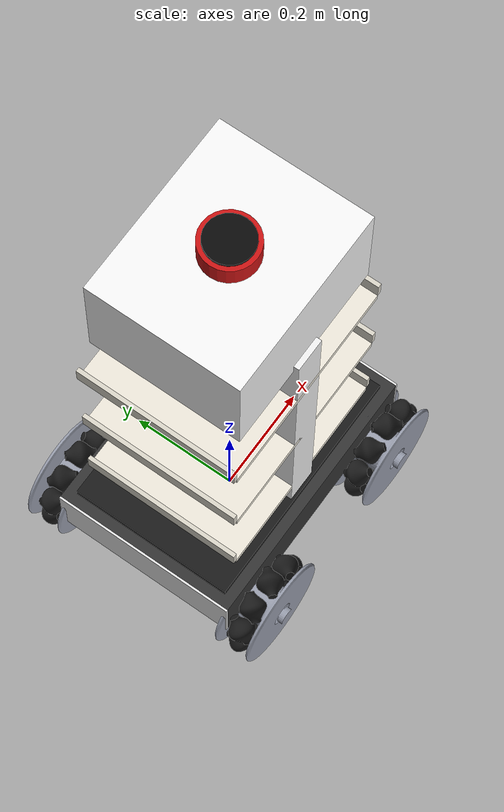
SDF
<?xml version="1.0" ?>
<sdf version="1.6">
  <model name="mecanum_bot" xmlns:ignition="http://ignitionrobotics.org/schema">

    <link name="base_link">
      <pose>0 0 0.15 0 0 0</pose>
      <inertial>
        <mass>15.0</mass>
        <inertia>
          <ixx>1.40</ixx><ixy>0</ixy><ixz>0</ixz>
          <iyy>1.56</iyy><iyz>0</iyz><izz>0.47</izz>
        </inertia>
      </inertial>

      <!-- ── Chassis body — dark charcoal ───────────────────── -->
      <visual name="chassis">
        <geometry><box><size>0.50 0.35 0.10</size></box></geometry>
        <material>
          <ambient>0.18 0.18 0.18 1</ambient>
          <diffuse>0.20 0.20 0.20 1</diffuse>
          <specular>0.30 0.30 0.30 1</specular>
        </material>
      </visual>

      <!-- Chassis top plate — slightly darker -->
      <visual name="chassis_top">
        <pose>0 0 0.056 0 0 0</pose>
        <geometry><box><size>0.46 0.31 0.012</size></box></geometry>
        <material>
          <ambient>0.10 0.10 0.10 1</ambient>
          <diffuse>0.10 0.10 0.10 1</diffuse>
          <specular>0.15 0.15 0.15 1</specular>
        </material>
      </visual>

      <!-- Front accent strip — white -->
      <visual name="front_strip">
        <pose>0.252 0 0 0 0 0</pose>
        <geometry><box><size>0.004 0.35 0.10</size></box></geometry>
        <material>
          <ambient>0.90 0.90 0.90 1</ambient>
          <diffuse>0.90 0.90 0.90 1</diffuse>
        </material>
      </visual>

      <!-- Rear accent strip — white -->
      <visual name="rear_strip">
        <pose>-0.252 0 0 0 0 0</pose>
        <geometry><box><size>0.004 0.35 0.10</size></box></geometry>
        <material>
          <ambient>0.90 0.90 0.90 1</ambient>
          <diffuse>0.90 0.90 0.90 1</diffuse>
        </material>
      </visual>

      <!-- ── Vertical pillars — pure white ──────────────────────
           BL z=0.34, h=0.58 → world z=0.20 to 0.78 m
      ─────────────────────────────────────────────────────────── -->
      <visual name="pillar_left">
        <pose>0 0.125 0.34 0 0 0</pose>
        <geometry><box><size>0.06 0.05 0.58</size></box></geometry>
        <material>
          <ambient>0.94 0.94 0.94 1</ambient>
          <diffuse>0.94 0.94 0.94 1</diffuse>
          <specular>0.70 0.70 0.70 1</specular>
        </material>
      </visual>

      <visual name="pillar_right">
        <pose>0 -0.125 0.34 0 0 0</pose>
        <geometry><box><size>0.06 0.05 0.58</size></box></geometry>
        <material>
          <ambient>0.94 0.94 0.94 1</ambient>
          <diffuse>0.94 0.94 0.94 1</diffuse>
          <specular>0.70 0.70 0.70 1</specular>
        </material>
      </visual>

      <visual name="shelf1_tray">
        <pose>0 0 0.12 0 0 0</pose>
        <geometry><box><size>0.38 0.30 0.012</size></box></geometry>
        <material>
          <ambient>0.92 0.90 0.85 1</ambient>
          <diffuse>0.92 0.90 0.85 1</diffuse>
          <specular>0.50 0.50 0.45 1</specular>
        </material>
      </visual>
      <!-- front lip: tray top = 0.126, lip half-h = 0.015, lip centre z=0.141 -->
      <visual name="shelf1_lip_front">
        <pose>0.194 0 0.141 0 0 0</pose>
        <geometry><box><size>0.008 0.30 0.030</size></box></geometry>
        <material>
          <ambient>0.85 0.83 0.78 1</ambient>
          <diffuse>0.85 0.83 0.78 1</diffuse>
        </material>
      </visual>
      <visual name="shelf1_lip_back">
        <pose>-0.194 0 0.141 0 0 0</pose>
        <geometry><box><size>0.008 0.30 0.030</size></box></geometry>
        <material>
          <ambient>0.85 0.83 0.78 1</ambient>
          <diffuse>0.85 0.83 0.78 1</diffuse>
        </material>
      </visual>

      <!-- ── SHELF 2 — world z≈0.46 m (BL z=0.31) ─────────────  -->
      <visual name="shelf2_tray">
        <pose>0 0 0.31 0 0 0</pose>
        <geometry><box><size>0.38 0.30 0.012</size></box></geometry>
        <material>
          <ambient>0.92 0.90 0.85 1</ambient>
          <diffuse>0.92 0.90 0.85 1</diffuse>
          <specular>0.50 0.50 0.45 1</specular>
        </material>
      </visual>
      <visual name="shelf2_lip_front">
        <pose>0.194 0 0.331 0 0 0</pose>
        <geometry><box><size>0.008 0.30 0.030</size></box></geometry>
        <material>
          <ambient>0.85 0.83 0.78 1</ambient>
          <diffuse>0.85 0.83 0.78 1</diffuse>
        </material>
      </visual>
      <visual name="shelf2_lip_back">
        <pose>-0.194 0 0.331 0 0 0</pose>
        <geometry><box><size>0.008 0.30 0.030</size></box></geometry>
        <material>
          <ambient>0.85 0.83 0.78 1</ambient>
          <diffuse>0.85 0.83 0.78 1</diffuse>
        </material>
      </visual>

      <!-- ── SHELF 3 — world z≈0.65 m (BL z=0.50) ─────────────  -->
      <visual name="shelf3_tray">
        <pose>0 0 0.50 0 0 0</pose>
        <geometry><box><size>0.38 0.30 0.012</size></box></geometry>
        <material>
          <ambient>0.92 0.90 0.85 1</ambient>
          <diffuse>0.92 0.90 0.85 1</diffuse>
          <specular>0.50 0.50 0.45 1</specular>
        </material>
      </visual>
      <visual name="shelf3_lip_front">
        <pose>0.194 0 0.521 0 0 0</pose>
        <geometry><box><size>0.008 0.30 0.030</size></box></geometry>
        <material>
          <ambient>0.85 0.83 0.78 1</ambient>
          <diffuse>0.85 0.83 0.78 1</diffuse>
        </material>
      </visual>
      <visual name="shelf3_lip_back">
        <pose>-0.194 0 0.521 0 0 0</pose>
        <geometry><box><size>0.008 0.30 0.030</size></box></geometry>
        <material>
          <ambient>0.85 0.83 0.78 1</ambient>
          <diffuse>0.85 0.83 0.78 1</diffuse>
        </material>
      </visual>

      <!-- ── HEAD — world z=0.76–0.96 m (BL z centre=0.71) ─────
           White rounded-look block: 0.34 × 0.28 × 0.20
      ─────────────────────────────────────────────────────────── -->
      <visual name="head_body">
        <pose>0 0 0.71 0 0 0</pose>
        <geometry><box><size>0.34 0.28 0.20</size></box></geometry>
        <material>
          <ambient>0.96 0.96 0.96 1</ambient>
          <diffuse>0.96 0.96 0.96 1</diffuse>
          <specular>0.80 0.80 0.80 1</specular>
        </material>
      </visual>

      <!-- Display panel — deep blue, front face of head (x=+0.171) -->
      <visual name="head_display">
        <pose>0.171 0 0.71 0 0 0</pose>
        <geometry><box><size>0.004 0.26 0.16</size></box></geometry>
        <material>
          <ambient>0.04 0.28 0.70 1</ambient>
          <diffuse>0.05 0.32 0.75 1</diffuse>
          <specular>0.20 0.50 0.90 1</specular>
          <emissive>0.01 0.06 0.18 1</emissive>
        </material>
      </visual>

      <!-- Eye left — cyan disc, rotated so flat face shows forward -->
      <visual name="eye_left">
        <pose>0.174 0.07 0.755 0 1.5707 0</pose>
        <geometry><cylinder><radius>0.018</radius><length>0.006</length></cylinder></geometry>
        <material>
          <ambient>0.0 0.85 0.95 1</ambient>
          <diffuse>0.0 0.85 0.95 1</diffuse>
          <emissive>0.0 0.25 0.30 1</emissive>
        </material>
      </visual>

      <!-- Eye right -->
      <visual name="eye_right">
        <pose>0.174 -0.07 0.755 0 1.5707 0</pose>
        <geometry><cylinder><radius>0.018</radius><length>0.006</length></cylinder></geometry>
        <material>
          <ambient>0.0 0.85 0.95 1</ambient>
          <diffuse>0.0 0.85 0.95 1</diffuse>
          <emissive>0.0 0.25 0.30 1</emissive>
        </material>
      </visual>

      <!-- Status bar — green strip at bottom of display (BL z=0.626) -->
      <visual name="head_status_bar">
        <pose>0.172 0 0.626 0 0 0</pose>
        <geometry><box><size>0.004 0.22 0.012</size></box></geometry>
        <material>
          <ambient>0.0 0.90 0.35 1</ambient>
          <diffuse>0.0 0.90 0.35 1</diffuse>
          <emissive>0.0 0.28 0.10 1</emissive>
        </material>
      </visual>

      <!-- ── Collisions ──────────────────────────────────────── -->
      <!-- Lower chassis box (for ground contact reactions) -->
      <collision name="chassis_col">
        <geometry><box><size>0.50 0.35 0.10</size></box></geometry>
      </collision>
      <!-- Upper tower box (obstacle avoidance, covers pillars + head) -->
      <collision name="tower_col">
        <pose>0 0 0.43 0 0 0</pose>
        <geometry><box><size>0.36 0.30 0.76</size></box></geometry>
      </collision>

      <!-- IMU — gyroscope fixes rotation drift during in-place turns -->
      <sensor name="imu_sensor" type="imu">
        <always_on>1</always_on>
        <update_rate>100</update_rate>
        <topic>/imu</topic>
        <ignition_frame_id>base_link</ignition_frame_id>
        <imu>
          <angular_velocity>
            <x><noise type="gaussian"><mean>0</mean><stddev>2e-4</stddev></noise></x>
            <y><noise type="gaussian"><mean>0</mean><stddev>2e-4</stddev></noise></y>
            <z><noise type="gaussian"><mean>0</mean><stddev>2e-4</stddev></noise></z>
          </angular_velocity>
          <linear_acceleration>
            <x><noise type="gaussian"><mean>0</mean><stddev>1.7e-2</stddev></noise></x>
            <y><noise type="gaussian"><mean>0</mean><stddev>1.7e-2</stddev></noise></y>
            <z><noise type="gaussian"><mean>0</mean><stddev>1.7e-2</stddev></noise></z>
          </linear_acceleration>
        </imu>
      </sensor>
    </link>

    <!-- ════════════════════════════════════════════════════════════
         WHEELS (unchanged from original — physics and visuals)
    ════════════════════════════════════════════════════════════ -->

    <!-- ── FRONT LEFT  "/" rollers  fdir1 = 1 -1 0 ───────────── -->
    <link name="front_left_wheel">
      <pose>0.175 0.2 0.1 -1.5707 0 0</pose>
      <inertial><mass>0.5</mass><inertia>
        <ixx>0.001354</ixx><ixy>0</ixy><ixz>0</ixz>
        <iyy>0.001354</iyy><iyz>0</iyz><izz>0.002500</izz>
      </inertia></inertial>

      <visual name="frame"><geometry>
        <mesh><uri>model://mecanum_bot/meshes/wheel_frame.stl</uri></mesh>
      </geometry><material>
        <ambient>0.60 0.62 0.68 1</ambient><diffuse>0.60 0.62 0.68 1</diffuse>
        <specular>0.92 0.94 0.98 1</specular>
      </material></visual>

      <!-- 9 rubber rollers — FL/RR type (left=True) -->
      <visual name="rl0"><pose>0.07500 0.00000 0.0 -0.78540 0.00000 0.00000</pose><geometry><mesh><uri>model://mecanum_bot/meshes/mecanum_roller.stl</uri></mesh></geometry><material><ambient>0.08 0.08 0.08 1</ambient><diffuse>0.10 0.10 0.10 1</diffuse><specular>0.05 0.05 0.05 1</specular></material></visual>
      <visual name="rl1"><pose>0.05745 0.04821 0.0 -0.65369 -0.47183 0.16263</pose><geometry><mesh><uri>model://mecanum_bot/meshes/mecanum_roller.stl</uri></mesh></geometry><material><ambient>0.08 0.08 0.08 1</ambient><diffuse>0.10 0.10 0.10 1</diffuse><specular>0.05 0.05 0.05 1</specular></material></visual>
      <visual name="rl2"><pose>0.01302 0.07386 0.0 -0.17193 -0.77032 0.06985</pose><geometry><mesh><uri>model://mecanum_bot/meshes/mecanum_roller.stl</uri></mesh></geometry><material><ambient>0.08 0.08 0.08 1</ambient><diffuse>0.10 0.10 0.10 1</diffuse><specular>0.05 0.05 0.05 1</specular></material></visual>
      <visual name="rl3"><pose>-0.03750 0.06495 0.0 0.46365 -0.65906 -0.16112</pose><geometry><mesh><uri>model://mecanum_bot/meshes/mecanum_roller.stl</uri></mesh></geometry><material><ambient>0.08 0.08 0.08 1</ambient><diffuse>0.10 0.10 0.10 1</diffuse><specular>0.05 0.05 0.05 1</specular></material></visual>
      <visual name="rl4"><pose>-0.07048 0.02565 0.0 0.75432 -0.24427 -0.09717</pose><geometry><mesh><uri>model://mecanum_bot/meshes/mecanum_roller.stl</uri></mesh></geometry><material><ambient>0.08 0.08 0.08 1</ambient><diffuse>0.10 0.10 0.10 1</diffuse><specular>0.05 0.05 0.05 1</specular></material></visual>
      <visual name="rl5"><pose>-0.07048 -0.02565 0.0 0.75432 0.24427 0.09717</pose><geometry><mesh><uri>model://mecanum_bot/meshes/mecanum_roller.stl</uri></mesh></geometry><material><ambient>0.08 0.08 0.08 1</ambient><diffuse>0.10 0.10 0.10 1</diffuse><specular>0.05 0.05 0.05 1</specular></material></visual>
      <visual name="rl6"><pose>-0.03750 -0.06495 0.0 0.46365 0.65906 0.16112</pose><geometry><mesh><uri>model://mecanum_bot/meshes/mecanum_roller.stl</uri></mesh></geometry><material><ambient>0.08 0.08 0.08 1</ambient><diffuse>0.10 0.10 0.10 1</diffuse><specular>0.05 0.05 0.05 1</specular></material></visual>
      <visual name="rl7"><pose>0.01302 -0.07386 0.0 -0.17193 0.77032 -0.06985</pose><geometry><mesh><uri>model://mecanum_bot/meshes/mecanum_roller.stl</uri></mesh></geometry><material><ambient>0.08 0.08 0.08 1</ambient><diffuse>0.10 0.10 0.10 1</diffuse><specular>0.05 0.05 0.05 1</specular></material></visual>
      <visual name="rl8"><pose>0.05745 -0.04821 0.0 -0.65369 0.47183 -0.16263</pose><geometry><mesh><uri>model://mecanum_bot/meshes/mecanum_roller.stl</uri></mesh></geometry><material><ambient>0.08 0.08 0.08 1</ambient><diffuse>0.10 0.10 0.10 1</diffuse><specular>0.05 0.05 0.05 1</specular></material></visual>

      <collision name="c"><geometry><sphere><radius>0.1</radius></sphere></geometry>
        <surface><friction><ode><mu>1.0</mu><mu2>0.0</mu2>
          <fdir1 ignition:expressed_in="base_link">1 -1 0</fdir1>
        </ode></friction></surface></collision>
    </link>

    <!-- ── FRONT RIGHT  "\" rollers  fdir1 = 1 1 0 ───────────── -->
    <link name="front_right_wheel">
      <pose>0.175 -0.2 0.1 -1.5707 0 0</pose>
      <inertial><mass>0.5</mass><inertia>
        <ixx>0.001354</ixx><ixy>0</ixy><ixz>0</ixz>
        <iyy>0.001354</iyy><iyz>0</iyz><izz>0.002500</izz>
      </inertia></inertial>

      <visual name="frame"><geometry>
        <mesh><uri>model://mecanum_bot/meshes/wheel_frame.stl</uri></mesh>
      </geometry><material>
        <ambient>0.60 0.62 0.68 1</ambient><diffuse>0.60 0.62 0.68 1</diffuse>
        <specular>0.92 0.94 0.98 1</specular>
      </material></visual>

      <!-- 9 rubber rollers — FR/RL type (left=False) -->
      <visual name="rl0"><pose>0.07500 0.00000 0.0 -2.35619 -0.00000 0.00000</pose><geometry><mesh><uri>model://mecanum_bot/meshes/mecanum_roller.stl</uri></mesh></geometry><material><ambient>0.08 0.08 0.08 1</ambient><diffuse>0.10 0.10 0.10 1</diffuse><specular>0.05 0.05 0.05 1</specular></material></visual>
      <visual name="rl1"><pose>0.05745 0.04821 0.0 -2.48790 -0.47183 1.23363</pose><geometry><mesh><uri>model://mecanum_bot/meshes/mecanum_roller.stl</uri></mesh></geometry><material><ambient>0.08 0.08 0.08 1</ambient><diffuse>0.10 0.10 0.10 1</diffuse><specular>0.05 0.05 0.05 1</specular></material></visual>
      <visual name="rl2"><pose>0.01302 0.07386 0.0 -2.96966 -0.77032 2.72268</pose><geometry><mesh><uri>model://mecanum_bot/meshes/mecanum_roller.stl</uri></mesh></geometry><material><ambient>0.08 0.08 0.08 1</ambient><diffuse>0.10 0.10 0.10 1</diffuse><specular>0.05 0.05 0.05 1</specular></material></visual>
      <visual name="rl3"><pose>-0.03750 0.06495 0.0 2.67795 -0.65906 -1.93327</pose><geometry><mesh><uri>model://mecanum_bot/meshes/mecanum_roller.stl</uri></mesh></geometry><material><ambient>0.08 0.08 0.08 1</ambient><diffuse>0.10 0.10 0.10 1</diffuse><specular>0.05 0.05 0.05 1</specular></material></visual>
      <visual name="rl4"><pose>-0.07048 0.02565 0.0 2.38728 -0.24427 -0.60096</pose><geometry><mesh><uri>model://mecanum_bot/meshes/mecanum_roller.stl</uri></mesh></geometry><material><ambient>0.08 0.08 0.08 1</ambient><diffuse>0.10 0.10 0.10 1</diffuse><specular>0.05 0.05 0.05 1</specular></material></visual>
      <visual name="rl5"><pose>-0.07048 -0.02565 0.0 2.38728 0.24427 0.60096</pose><geometry><mesh><uri>model://mecanum_bot/meshes/mecanum_roller.stl</uri></mesh></geometry><material><ambient>0.08 0.08 0.08 1</ambient><diffuse>0.10 0.10 0.10 1</diffuse><specular>0.05 0.05 0.05 1</specular></material></visual>
      <visual name="rl6"><pose>-0.03750 -0.06495 0.0 2.67795 0.65906 1.93327</pose><geometry><mesh><uri>model://mecanum_bot/meshes/mecanum_roller.stl</uri></mesh></geometry><material><ambient>0.08 0.08 0.08 1</ambient><diffuse>0.10 0.10 0.10 1</diffuse><specular>0.05 0.05 0.05 1</specular></material></visual>
      <visual name="rl7"><pose>0.01302 -0.07386 0.0 -2.96966 0.77032 -2.72268</pose><geometry><mesh><uri>model://mecanum_bot/meshes/mecanum_roller.stl</uri></mesh></geometry><material><ambient>0.08 0.08 0.08 1</ambient><diffuse>0.10 0.10 0.10 1</diffuse><specular>0.05 0.05 0.05 1</specular></material></visual>
      <visual name="rl8"><pose>0.05745 -0.04821 0.0 -2.48790 0.47183 -1.23363</pose><geometry><mesh><uri>model://mecanum_bot/meshes/mecanum_roller.stl</uri></mesh></geometry><material><ambient>0.08 0.08 0.08 1</ambient><diffuse>0.10 0.10 0.10 1</diffuse><specular>0.05 0.05 0.05 1</specular></material></visual>

      <collision name="c"><geometry><sphere><radius>0.1</radius></sphere></geometry>
        <surface><friction><ode><mu>1.0</mu><mu2>0.0</mu2>
          <fdir1 ignition:expressed_in="base_link">1 1 0</fdir1>
        </ode></friction></surface></collision>
    </link>

    <!-- ── REAR LEFT  "\" rollers  fdir1 = 1 1 0 ─────────────── -->
    <link name="rear_left_wheel">
      <pose>-0.175 0.2 0.1 -1.5707 0 0</pose>
      <inertial><mass>0.5</mass><inertia>
        <ixx>0.001354</ixx><ixy>0</ixy><ixz>0</ixz>
        <iyy>0.001354</iyy><iyz>0</iyz><izz>0.002500</izz>
      </inertia></inertial>

      <visual name="frame"><geometry>
        <mesh><uri>model://mecanum_bot/meshes/wheel_frame.stl</uri></mesh>
      </geometry><material>
        <ambient>0.60 0.62 0.68 1</ambient><diffuse>0.60 0.62 0.68 1</diffuse>
        <specular>0.92 0.94 0.98 1</specular>
      </material></visual>

      <!-- FR/RL type -->
      <visual name="rl0"><pose>0.07500 0.00000 0.0 -2.35619 -0.00000 0.00000</pose><geometry><mesh><uri>model://mecanum_bot/meshes/mecanum_roller.stl</uri></mesh></geometry><material><ambient>0.08 0.08 0.08 1</ambient><diffuse>0.10 0.10 0.10 1</diffuse><specular>0.05 0.05 0.05 1</specular></material></visual>
      <visual name="rl1"><pose>0.05745 0.04821 0.0 -2.48790 -0.47183 1.23363</pose><geometry><mesh><uri>model://mecanum_bot/meshes/mecanum_roller.stl</uri></mesh></geometry><material><ambient>0.08 0.08 0.08 1</ambient><diffuse>0.10 0.10 0.10 1</diffuse><specular>0.05 0.05 0.05 1</specular></material></visual>
      <visual name="rl2"><pose>0.01302 0.07386 0.0 -2.96966 -0.77032 2.72268</pose><geometry><mesh><uri>model://mecanum_bot/meshes/mecanum_roller.stl</uri></mesh></geometry><material><ambient>0.08 0.08 0.08 1</ambient><diffuse>0.10 0.10 0.10 1</diffuse><specular>0.05 0.05 0.05 1</specular></material></visual>
      <visual name="rl3"><pose>-0.03750 0.06495 0.0 2.67795 -0.65906 -1.93327</pose><geometry><mesh><uri>model://mecanum_bot/meshes/mecanum_roller.stl</uri></mesh></geometry><material><ambient>0.08 0.08 0.08 1</ambient><diffuse>0.10 0.10 0.10 1</diffuse><specular>0.05 0.05 0.05 1</specular></material></visual>
      <visual name="rl4"><pose>-0.07048 0.02565 0.0 2.38728 -0.24427 -0.60096</pose><geometry><mesh><uri>model://mecanum_bot/meshes/mecanum_roller.stl</uri></mesh></geometry><material><ambient>0.08 0.08 0.08 1</ambient><diffuse>0.10 0.10 0.10 1</diffuse><specular>0.05 0.05 0.05 1</specular></material></visual>
      <visual name="rl5"><pose>-0.07048 -0.02565 0.0 2.38728 0.24427 0.60096</pose><geometry><mesh><uri>model://mecanum_bot/meshes/mecanum_roller.stl</uri></mesh></geometry><material><ambient>0.08 0.08 0.08 1</ambient><diffuse>0.10 0.10 0.10 1</diffuse><specular>0.05 0.05 0.05 1</specular></material></visual>
      <visual name="rl6"><pose>-0.03750 -0.06495 0.0 2.67795 0.65906 1.93327</pose><geometry><mesh><uri>model://mecanum_bot/meshes/mecanum_roller.stl</uri></mesh></geometry><material><ambient>0.08 0.08 0.08 1</ambient><diffuse>0.10 0.10 0.10 1</diffuse><specular>0.05 0.05 0.05 1</specular></material></visual>
      <visual name="rl7"><pose>0.01302 -0.07386 0.0 -2.96966 0.77032 -2.72268</pose><geometry><mesh><uri>model://mecanum_bot/meshes/mecanum_roller.stl</uri></mesh></geometry><material><ambient>0.08 0.08 0.08 1</ambient><diffuse>0.10 0.10 0.10 1</diffuse><specular>0.05 0.05 0.05 1</specular></material></visual>
      <visual name="rl8"><pose>0.05745 -0.04821 0.0 -2.48790 0.47183 -1.23363</pose><geometry><mesh><uri>model://mecanum_bot/meshes/mecanum_roller.stl</uri></mesh></geometry><material><ambient>0.08 0.08 0.08 1</ambient><diffuse>0.10 0.10 0.10 1</diffuse><specular>0.05 0.05 0.05 1</specular></material></visual>

      <collision name="c"><geometry><sphere><radius>0.1</radius></sphere></geometry>
        <surface><friction><ode><mu>1.0</mu><mu2>0.0</mu2>
          <fdir1 ignition:expressed_in="base_link">1 1 0</fdir1>
        </ode></friction></surface></collision>
    </link>

    <!-- ── REAR RIGHT  "/" rollers  fdir1 = 1 -1 0 ───────────── -->
    <link name="rear_right_wheel">
      <pose>-0.175 -0.2 0.1 -1.5707 0 0</pose>
      <inertial><mass>0.5</mass><inertia>
        <ixx>0.001354</ixx><ixy>0</ixy><ixz>0</ixz>
        <iyy>0.001354</iyy><iyz>0</iyz><izz>0.002500</izz>
      </inertia></inertial>

      <visual name="frame"><geometry>
        <mesh><uri>model://mecanum_bot/meshes/wheel_frame.stl</uri></mesh>
      </geometry><material>
        <ambient>0.60 0.62 0.68 1</ambient><diffuse>0.60 0.62 0.68 1</diffuse>
        <specular>0.92 0.94 0.98 1</specular>
      </material></visual>

      <!-- FL/RR type -->
      <visual name="rl0"><pose>0.07500 0.00000 0.0 -0.78540 0.00000 0.00000</pose><geometry><mesh><uri>model://mecanum_bot/meshes/mecanum_roller.stl</uri></mesh></geometry><material><ambient>0.08 0.08 0.08 1</ambient><diffuse>0.10 0.10 0.10 1</diffuse><specular>0.05 0.05 0.05 1</specular></material></visual>
      <visual name="rl1"><pose>0.05745 0.04821 0.0 -0.65369 -0.47183 0.16263</pose><geometry><mesh><uri>model://mecanum_bot/meshes/mecanum_roller.stl</uri></mesh></geometry><material><ambient>0.08 0.08 0.08 1</ambient><diffuse>0.10 0.10 0.10 1</diffuse><specular>0.05 0.05 0.05 1</specular></material></visual>
      <visual name="rl2"><pose>0.01302 0.07386 0.0 -0.17193 -0.77032 0.06985</pose><geometry><mesh><uri>model://mecanum_bot/meshes/mecanum_roller.stl</uri></mesh></geometry><material><ambient>0.08 0.08 0.08 1</ambient><diffuse>0.10 0.10 0.10 1</diffuse><specular>0.05 0.05 0.05 1</specular></material></visual>
      <visual name="rl3"><pose>-0.03750 0.06495 0.0 0.46365 -0.65906 -0.16112</pose><geometry><mesh><uri>model://mecanum_bot/meshes/mecanum_roller.stl</uri></mesh></geometry><material><ambient>0.08 0.08 0.08 1</ambient><diffuse>0.10 0.10 0.10 1</diffuse><specular>0.05 0.05 0.05 1</specular></material></visual>
      <visual name="rl4"><pose>-0.07048 0.02565 0.0 0.75432 -0.24427 -0.09717</pose><geometry><mesh><uri>model://mecanum_bot/meshes/mecanum_roller.stl</uri></mesh></geometry><material><ambient>0.08 0.08 0.08 1</ambient><diffuse>0.10 0.10 0.10 1</diffuse><specular>0.05 0.05 0.05 1</specular></material></visual>
      <visual name="rl5"><pose>-0.07048 -0.02565 0.0 0.75432 0.24427 0.09717</pose><geometry><mesh><uri>model://mecanum_bot/meshes/mecanum_roller.stl</uri></mesh></geometry><material><ambient>0.08 0.08 0.08 1</ambient><diffuse>0.10 0.10 0.10 1</diffuse><specular>0.05 0.05 0.05 1</specular></material></visual>
      <visual name="rl6"><pose>-0.03750 -0.06495 0.0 0.46365 0.65906 0.16112</pose><geometry><mesh><uri>model://mecanum_bot/meshes/mecanum_roller.stl</uri></mesh></geometry><material><ambient>0.08 0.08 0.08 1</ambient><diffuse>0.10 0.10 0.10 1</diffuse><specular>0.05 0.05 0.05 1</specular></material></visual>
      <visual name="rl7"><pose>0.01302 -0.07386 0.0 -0.17193 0.77032 -0.06985</pose><geometry><mesh><uri>model://mecanum_bot/meshes/mecanum_roller.stl</uri></mesh></geometry><material><ambient>0.08 0.08 0.08 1</ambient><diffuse>0.10 0.10 0.10 1</diffuse><specular>0.05 0.05 0.05 1</specular></material></visual>
      <visual name="rl8"><pose>0.05745 -0.04821 0.0 -0.65369 0.47183 -0.16263</pose><geometry><mesh><uri>model://mecanum_bot/meshes/mecanum_roller.stl</uri></mesh></geometry><material><ambient>0.08 0.08 0.08 1</ambient><diffuse>0.10 0.10 0.10 1</diffuse><specular>0.05 0.05 0.05 1</specular></material></visual>

      <collision name="c"><geometry><sphere><radius>0.1</radius></sphere></geometry>
        <surface><friction><ode><mu>1.0</mu><mu2>0.0</mu2>
          <fdir1 ignition:expressed_in="base_link">1 -1 0</fdir1>
        </ode></friction></surface></collision>
    </link>

    <link name="lidar_link">
      <pose>0 0 0.98 0 0 0</pose>
      <inertial><mass>0.15</mass><inertia>
        <ixx>0.0002</ixx><ixy>0</ixy><ixz>0</ixz>
        <iyy>0.0002</iyy><iyz>0</iyz><izz>0.0002</izz>
      </inertia></inertial>

      <!-- LiDAR housing — dark red cylinder -->
      <visual name="body">
        <geometry><cylinder><radius>0.050</radius><length>0.040</length></cylinder></geometry>
        <material>
          <ambient>0.75 0.06 0.06 1</ambient>
          <diffuse>0.80 0.08 0.08 1</diffuse>
          <specular>0.30 0.05 0.05 1</specular>
        </material>
      </visual>
      <!-- Scanning window ring -->
      <visual name="ring">
        <pose>0 0 0.022 0 0 0</pose>
        <geometry><cylinder><radius>0.042</radius><length>0.005</length></cylinder></geometry>
        <material>
          <ambient>0.04 0.04 0.04 1</ambient>
          <diffuse>0.04 0.04 0.04 1</diffuse>
        </material>
      </visual>
      <collision name="c">
        <geometry><cylinder><radius>0.050</radius><length>0.040</length></cylinder></geometry>
      </collision>

      <sensor name="lidar_sensor" type="gpu_lidar">
        <pose>0 0 0 0 0 0</pose>
        <update_rate>10</update_rate>
        <topic>/scan</topic>
        <ignition_frame_id>lidar_link</ignition_frame_id>
        <lidar>
          <scan><horizontal>
            <samples>360</samples><resolution>1</resolution>
            <min_angle>-3.14159265</min_angle><max_angle>3.14159265</max_angle>
          </horizontal></scan>
          <range><min>0.12</min><max>10.0</max><resolution>0.01</resolution></range>
          <noise><type>gaussian</type><mean>0.0</mean><stddev>0.005</stddev></noise>
        </lidar>
        <always_on>1</always_on><visualize>true</visualize>
      </sensor>
    </link>

    <!-- ════════════════════════════════════════════════════════════
         JOINTS
    ════════════════════════════════════════════════════════════ -->
    <joint name="front_left_wheel_joint"  type="revolute">
      <parent>base_link</parent><child>front_left_wheel</child>
      <axis><xyz>0 0 1</xyz><limit><lower>-1.79769e+308</lower><upper>1.79769e+308</upper></limit></axis>
    </joint>
    <joint name="front_right_wheel_joint" type="revolute">
      <parent>base_link</parent><child>front_right_wheel</child>
      <axis><xyz>0 0 1</xyz><limit><lower>-1.79769e+308</lower><upper>1.79769e+308</upper></limit></axis>
    </joint>
    <joint name="rear_left_wheel_joint"   type="revolute">
      <parent>base_link</parent><child>rear_left_wheel</child>
      <axis><xyz>0 0 1</xyz><limit><lower>-1.79769e+308</lower><upper>1.79769e+308</upper></limit></axis>
    </joint>
    <joint name="rear_right_wheel_joint"  type="revolute">
      <parent>base_link</parent><child>rear_right_wheel</child>
      <axis><xyz>0 0 1</xyz><limit><lower>-1.79769e+308</lower><upper>1.79769e+308</upper></limit></axis>
    </joint>
    <joint name="lidar_joint" type="fixed">
      <parent>base_link</parent><child>lidar_link</child>
    </joint>

    <!-- ════════════════════════════════════════════════════════════
         PLUGINS
    ════════════════════════════════════════════════════════════ -->
    <plugin filename="ignition-gazebo-mecanum-drive-system"
            name="ignition::gazebo::systems::MecanumDrive">
      <front_left_joint>front_left_wheel_joint</front_left_joint>
      <front_right_joint>front_right_wheel_joint</front_right_joint>
      <back_left_joint>rear_left_wheel_joint</back_left_joint>
      <back_right_joint>rear_right_wheel_joint</back_right_joint>
      <wheel_separation>0.4</wheel_separation>
      <wheelbase>0.35</wheelbase>
      <wheel_radius>0.1</wheel_radius>
      <topic>/cmd_vel</topic>
      <odom_publish_frequency>50</odom_publish_frequency>
      <min_acceleration>-5</min_acceleration>
      <max_acceleration>5</max_acceleration>
      <odom_frame>odom</odom_frame>
      <robot_base_frame>base_footprint</robot_base_frame>
    </plugin>

    <plugin filename="ignition-gazebo-joint-state-publisher-system"
            name="ignition::gazebo::systems::JointStatePublisher"/>

  </model>
</sdf>
